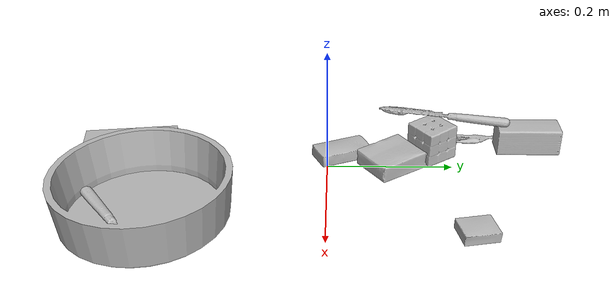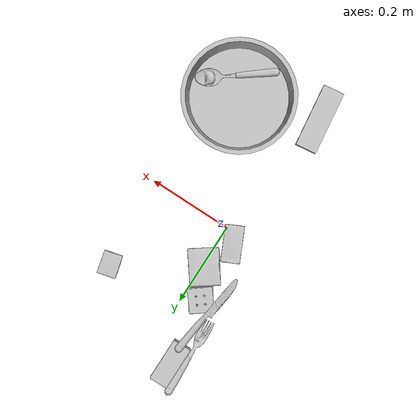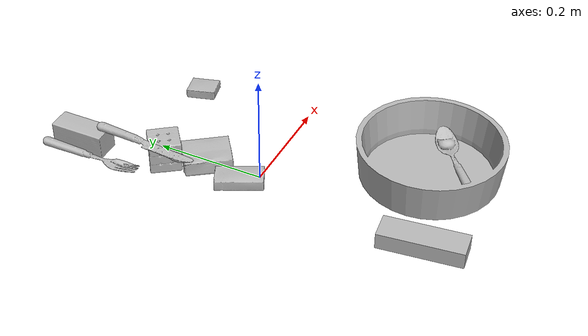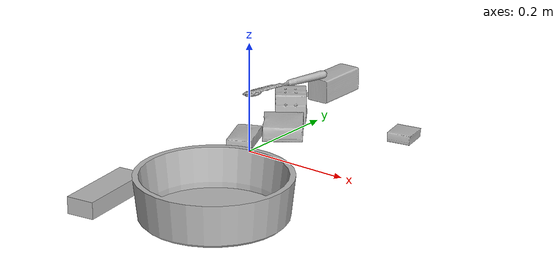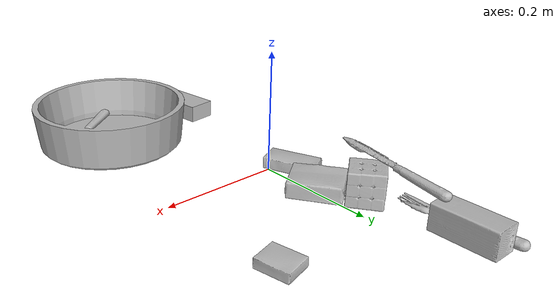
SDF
<sdf version="1.4">
  <world name="default">
    <light name="light1" type="point">
      <pose>0 0 1 0 0 0</pose>
      <diffuse>3 3 3 1</diffuse>
      <specular>3 3 3 1</specular>
    </light>
    <light name="light2" type="point">
      <pose>0 0.5 2 0 0 0</pose>
      <diffuse>1 1 1 1</diffuse>
      <specular>1 1 1 1</specular>
    </light>
    <light name="light3" type="point">
      <pose>0 0.5 2 0 0 0</pose>
      <diffuse>3 3 3 1</diffuse>
      <specular>3 3 3 1</specular>
    </light>
    <scene>
      <ambient>0.7 0.7 0.7</ambient>
    </scene>
    <model name="box11">
      <link name="link_box11">
        <collision name="default">
          <geometry>
            <mesh>
              <uri>model://jenga/collision_meshes/collision.obj</uri>
              <scale>1.0 1.0 1.0</scale>
            </mesh>
          </geometry>
          <surface>
            <friction>
              <ode>
                <mu>0.5</mu>
                <mu2>0.5</mu2>
              </ode>
            </friction>
          <contact>
        <ode>
            <max_vel>0</max_vel>
            <min_depth>0.0001</min_depth>
            <kp>1e8</kp>
        </ode>
    </contact></surface>
        </collision>
        <visual name="default">
          <geometry>
            <mesh>
              <uri>model://jenga/visual_meshes/visual.dae</uri>
              <scale>1.0 1.0 1.0</scale>
            </mesh>
          </geometry>
        </visual>
        <inertial>
          <mass>0.22063912451267242</mass>
          <pose>-2.502855807051674e-07 -0.00010250011109746993 -4.0923405322246253e-05 0.0 -7.34215461761844e-07 0.0</pose>
          <inertia>
            <ixx>6.1056206e-05</ixx>
            <iyy>0.00041371517</iyy>
            <izz>0.00044167612</izz>
            <ixy>0</ixy>
            <ixz>0</ixz>
            <iyz>0</iyz>
          </inertia>
        </inertial>
      </link>
      <pose>-0.043274134397506714 -0.323697030544281 0.01499999687075615 2.4398259210171606e-08 2.1570338093129435e-09 1.6973416480808625</pose>
    </model>
    <model name="box12">
      <link name="link_box12">
        <collision name="default">
          <geometry>
            <mesh>
              <uri>model://sugar_box/collision_meshes/collision.obj</uri>
              <scale>0.5 0.5 0.5</scale>
            </mesh>
          </geometry>
          <surface>
            <friction>
              <ode>
                <mu>0.5</mu>
                <mu2>0.5</mu2>
              </ode>
            </friction>
          <contact>
        <ode>
            <max_vel>0</max_vel>
            <min_depth>0.0001</min_depth>
            <kp>1e8</kp>
        </ode>
    </contact></surface>
        </collision>
        <visual name="default">
          <geometry>
            <mesh>
              <uri>model://sugar_box/visual_meshes/visual.dae</uri>
              <scale>0.5 0.5 0.5</scale>
            </mesh>
          </geometry>
        </visual>
        <inertial>
          <mass>0.053318966180086136</mass>
          <pose>0.0005171863595023751 1.924554817378521e-05 -0.00018182402709499002 -0.00040462627129080113 0.001050663522124822 0.0026153787889376494</pose>
          <inertia>
            <ixx>1.1106302e-05</ixx>
            <iyy>3.5897858e-05</iyy>
            <izz>4.2974014e-05</izz>
            <ixy>0</ixy>
            <ixz>0</ixz>
            <iyz>0</iyz>
          </inertia>
        </inertial>
      </link>
      <pose>-0.030525770038366318 0.02416747622191906 0.011399305425584316 0.0007749278079318021 -0.023433232120703782 -1.1395189761454572</pose>
    </model>
    <model name="box13">
      <link name="link_box13">
        <collision name="default">
          <geometry>
            <mesh>
              <uri>model://gelatin_box/collision_meshes/collision.obj</uri>
              <scale>1.0 1.0 1.0</scale>
            </mesh>
          </geometry>
          <surface>
            <friction>
              <ode>
                <mu>0.5</mu>
                <mu2>0.5</mu2>
              </ode>
            </friction>
          <contact>
        <ode>
            <max_vel>0</max_vel>
            <min_depth>0.0001</min_depth>
            <kp>1e8</kp>
        </ode>
    </contact></surface>
        </collision>
        <visual name="default">
          <geometry>
            <mesh>
              <uri>model://gelatin_box/visual_meshes/visual.dae</uri>
              <scale>1.0 1.0 1.0</scale>
            </mesh>
          </geometry>
        </visual>
        <inertial>
          <mass>0.19111748039722443</mass>
          <pose>0.0004319618456065655 0.00011156871914863586 -0.00036403207923285663 -0.0010503719765995955 -0.004755818690324038 0.01644055947160125</pose>
          <inertia>
            <ixx>0.00013491335</ixx>
            <iyy>9.63679e-05</iyy>
            <izz>0.00020536821</izz>
            <ixy>0</ixy>
            <ixz>0</ixz>
            <iyz>0</iyz>
          </inertia>
        </inertial>
      </link>
      <pose>-0.004664272535592318 0.10381295531988144 0.015168316662311554 0.005597212179592038 -0.007304257014672459 -2.524881685103582</pose>
    </model>
    <model name="box21">
      <link name="link_box21">
        <collision name="default">
          <geometry>
            <mesh>
              <uri>model://pudding_box/collision_meshes/collision.obj</uri>
              <scale>0.5 0.5 0.5</scale>
            </mesh>
          </geometry>
          <surface>
            <friction>
              <ode>
                <mu>0.5</mu>
                <mu2>0.5</mu2>
              </ode>
            </friction>
          <contact>
        <ode>
            <max_vel>0</max_vel>
            <min_depth>0.0001</min_depth>
            <kp>1e8</kp>
        </ode>
    </contact></surface>
        </collision>
        <visual name="default">
          <geometry>
            <mesh>
              <uri>model://pudding_box/visual_meshes/visual.dae</uri>
              <scale>0.5 0.5 0.5</scale>
            </mesh>
          </geometry>
        </visual>
        <inertial>
          <mass>0.037507444620132446</mass>
          <pose>0.00024474109522998333 0.0004033942532259971 -0.0002594413817860186 0.00521310221980129 -0.006603800139852783 0.020079832606434308</pose>
          <inertia>
            <ixx>1.0600058e-05</ixx>
            <iyy>7.131795e-06</iyy>
            <izz>1.5653754e-05</izz>
            <ixy>0</ixy>
            <ixz>0</ixz>
            <iyz>0</iyz>
          </inertia>
        </inertial>
      </link>
      <pose>0.18048742413520813 0.21602079272270203 0.009862903505563736 0.022348534947908633 -0.01139168695668566 -2.9097945343730998</pose>
    </model>
    <model name="box22">
      <link name="link_box22">
        <collision name="default">
          <geometry>
            <mesh>
              <uri>model://rubiks_cube/collision_meshes/collision.obj</uri>
              <scale>1.0 1.0 1.0</scale>
            </mesh>
          </geometry>
          <surface>
            <friction>
              <ode>
                <mu>0.5</mu>
                <mu2>0.5</mu2>
              </ode>
            </friction>
          <contact>
        <ode>
            <max_vel>0</max_vel>
            <min_depth>0.0001</min_depth>
            <kp>1e8</kp>
        </ode>
    </contact></surface>
        </collision>
        <visual name="default">
          <geometry>
            <mesh>
              <uri>model://rubiks_cube/visual_meshes/visual.dae</uri>
              <scale>1.0 1.0 1.0</scale>
            </mesh>
          </geometry>
        </visual>
        <inertial>
          <mass>0.19412381947040558</mass>
          <pose>2.6721041649580002e-05 5.2569666877388954e-05 -7.264316082000732e-06 -0.05467327462967597 -0.09814157667114887 -0.034454893398498845</pose>
          <inertia>
            <ixx>0.000107266445</ixx>
            <iyy>0.0001067662</iyy>
            <izz>0.00010815532</izz>
            <ixy>0</ixy>
            <ixz>0</ixz>
            <iyz>0</iyz>
          </inertia>
        </inertial>
      </link>
      <pose>-0.03877611458301544 0.17032350599765778 0.02867894060909748 -6.214222264057659e-06 -1.8914569919039031e-06 -0.920899668866905</pose>
    </model>
    <model name="box23">
      <link name="link_box23">
        <collision name="default">
          <geometry>
            <mesh>
              <uri>model://wood_block/collision_meshes/collision.obj</uri>
              <scale>0.5 0.5 0.5</scale>
            </mesh>
          </geometry>
          <surface>
            <friction>
              <ode>
                <mu>0.5</mu>
                <mu2>0.5</mu2>
              </ode>
            </friction>
          <contact>
        <ode>
            <max_vel>0</max_vel>
            <min_depth>0.0001</min_depth>
            <kp>1e8</kp>
        </ode>
    </contact></surface>
        </collision>
        <visual name="default">
          <geometry>
            <mesh>
              <uri>model://wood_block/visual_meshes/visual.dae</uri>
              <scale>0.5 0.5 0.5</scale>
            </mesh>
          </geometry>
        </visual>
        <inertial>
          <mass>0.12021861970424652</mass>
          <pose>-2.9066577553749084e-06 -0.000285404734313488 0.00013204291462898254 -0.05220783851692058 -0.005192695246339916 -0.006861377900732038</pose>
          <inertia>
            <ixx>4.0217674e-05</ixx>
            <iyy>0.00012704768</iyy>
            <izz>0.00012657243</izz>
            <ixy>0</ixy>
            <ixz>0</ixz>
            <iyz>0</iyz>
          </inertia>
        </inertial>
      </link>
      <pose>-0.05938391014933586 0.3303104341030121 0.0226292684674263 -0.005209521049618855 0.005719056334036532 1.5758062664898254</pose>
    </model>
    <model name="plate1">
      <link name="link_plate1">
        <collision name="default">
          <geometry>
            <mesh>
              <uri>model://pan_tefal/collision_meshes/collision.obj</uri>
              <scale>1.0 1.0 1.0</scale>
            </mesh>
          </geometry>
          <surface>
            <friction>
              <ode>
                <mu>0.5</mu>
                <mu2>0.5</mu2>
              </ode>
            </friction>
          <contact>
        <ode>
            <max_vel>0</max_vel>
            <min_depth>0.0001</min_depth>
            <kp>1e8</kp>
        </ode>
    </contact></surface>
        </collision>
        <visual name="default">
          <geometry>
            <mesh>
              <uri>model://pan_tefal/visual_meshes/visual.dae</uri>
              <scale>1.0 1.0 1.0</scale>
            </mesh>
          </geometry>
        </visual>
        <inertial>
          <mass>1.1174349784851074</mass>
          <pose>-0.0001800186582840979 3.278696021880023e-05 -0.00851493701338768 0.0008190242272949328 -0.00033013996347192336 -0.33186114310704434</pose>
          <inertia>
            <ixx>0.0077136005</ixx>
            <iyy>0.0077633304</iyy>
            <izz>0.014199255</izz>
            <ixy>0</ixy>
            <ixz>0</ixz>
            <iyz>0</iyz>
          </inertia>
        </inertial>
      </link>
      <pose>0.13897334039211273 -0.26561450958251953 0.03798886388540268 0.00031596684370993903 0.0004151772178081584 -0.16999289207391918</pose>
    </model>
    <model name="silverware1">
      <link name="link_silverware1">
        <collision name="default">
          <geometry>
            <mesh>
              <uri>model://spoon/collision_meshes/collision.obj</uri>
              <scale>1.0 1.0 1.0</scale>
            </mesh>
          </geometry>
          <surface>
            <friction>
              <ode>
                <mu>0.5</mu>
                <mu2>0.5</mu2>
              </ode>
            </friction>
          <contact>
        <ode>
            <max_vel>0</max_vel>
            <min_depth>0.0001</min_depth>
            <kp>1e8</kp>
        </ode>
    </contact></surface>
        </collision>
        <visual name="default">
          <geometry>
            <mesh>
              <uri>model://spoon/visual_meshes/visual.dae</uri>
              <scale>1.0 1.0 1.0</scale>
            </mesh>
          </geometry>
        </visual>
        <inertial>
          <mass>0.03790392354130745</mass>
          <pose>-0.005526311695575714 -0.0016034170985221863 -0.0007271655485965312 0.03521845899657386 -0.039065840459698326 0.006150612465639116</pose>
          <inertia>
            <ixx>2.1082776e-06</ixx>
            <iyy>0.00014422317</iyy>
            <izz>0.00014526285</izz>
            <ixy>0</ixy>
            <ixz>0</ixz>
            <iyz>0</iyz>
          </inertia>
        </inertial>
      </link>
      <pose>0.17009223997592926 -0.30475229024887085 0.015701040625572205 -0.01239981281098135 0.021427427857836502 0.6489366731698116</pose>
    </model>
    <model name="silverware2">
      <link name="link_silverware2">
        <collision name="default">
          <geometry>
            <mesh>
              <uri>model://fork/collision_meshes/collision.obj</uri>
              <scale>1.0 1.0 1.0</scale>
            </mesh>
          </geometry>
          <surface>
            <friction>
              <ode>
                <mu>0.5</mu>
                <mu2>0.5</mu2>
              </ode>
            </friction>
          <contact>
        <ode>
            <max_vel>0</max_vel>
            <min_depth>0.0001</min_depth>
            <kp>1e8</kp>
        </ode>
    </contact></surface>
        </collision>
        <visual name="default">
          <geometry>
            <mesh>
              <uri>model://fork/visual_meshes/visual.dae</uri>
              <scale>1.0 1.0 1.0</scale>
            </mesh>
          </geometry>
        </visual>
        <inertial>
          <mass>0.029004188254475594</mass>
          <pose>-0.02957005612552166 0.0004658824182115495 0.00032188621116802096 -0.013551880215526314 -0.010977843078655252 0.014453906566097012</pose>
          <inertia>
            <ixx>1.0167608e-06</ixx>
            <iyy>7.572158e-05</iyy>
            <izz>7.617634e-05</izz>
            <ixy>0</ixy>
            <ixz>0</ixz>
            <iyz>0</iyz>
          </inertia>
        </inertial>
      </link>
      <pose>-0.0883944183588028 0.2989741265773773 0.005229161586612463 0.003794997117937351 0.05065935496924853 -1.5437414695230924</pose>
    </model>
    <model name="silverware3">
      <link name="link_silverware3">
        <collision name="default">
          <geometry>
            <mesh>
              <uri>model://knife/collision_meshes/collision.obj</uri>
              <scale>1.0 1.0 1.0</scale>
            </mesh>
          </geometry>
          <surface>
            <friction>
              <ode>
                <mu>0.5</mu>
                <mu2>0.5</mu2>
              </ode>
            </friction>
          <contact>
        <ode>
            <max_vel>0</max_vel>
            <min_depth>0.0001</min_depth>
            <kp>1e8</kp>
        </ode>
    </contact></surface>
        </collision>
        <visual name="default">
          <geometry>
            <mesh>
              <uri>model://knife/visual_meshes/visual.dae</uri>
              <scale>1.0 1.0 1.0</scale>
            </mesh>
          </geometry>
        </visual>
        <inertial>
          <mass>0.015800314024090767</mass>
          <pose>-0.023785250261425972 0.0015275126788765192 5.0620288675418124e-05 0.07305498599936577 0.01724841842216061 -0.0074098211805850795</pose>
          <inertia>
            <ixx>4.48477e-07</ixx>
            <iyy>6.0702252e-05</iyy>
            <izz>6.0846694e-05</izz>
            <ixy>0</ixy>
            <ixz>0</ixz>
            <iyz>0</iyz>
          </inertia>
        </inertial>
      </link>
      <pose>-0.07024633139371872 0.1918022185564041 0.05716293305158615 0.07341181596489164 -0.05556654676691919 -1.7070453790824915</pose>
    </model>
  <physics type="ode">
      <max_contacts>50</max_contacts>
      <ode>
        <solver>
          <type>quick</type>
          <iters>75</iters>
        </solver>
        <constraints>
          <contact_max_correcting_vel>0</contact_max_correcting_vel>
          <contact_surface_layer>0</contact_surface_layer>
        </constraints>
      </ode>
    </physics></world>
</sdf>
